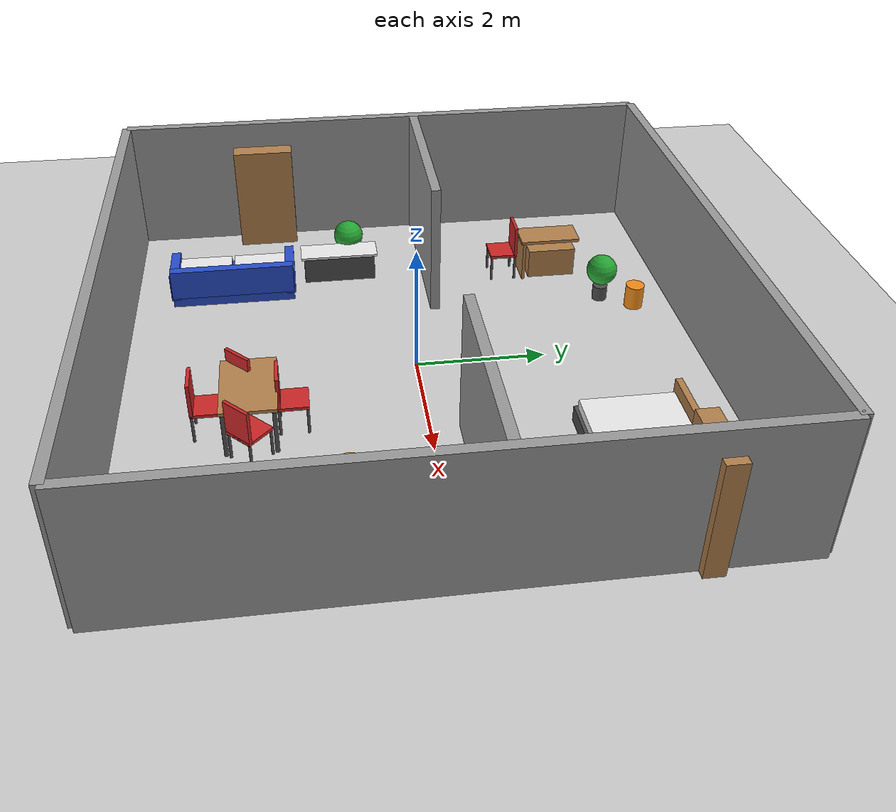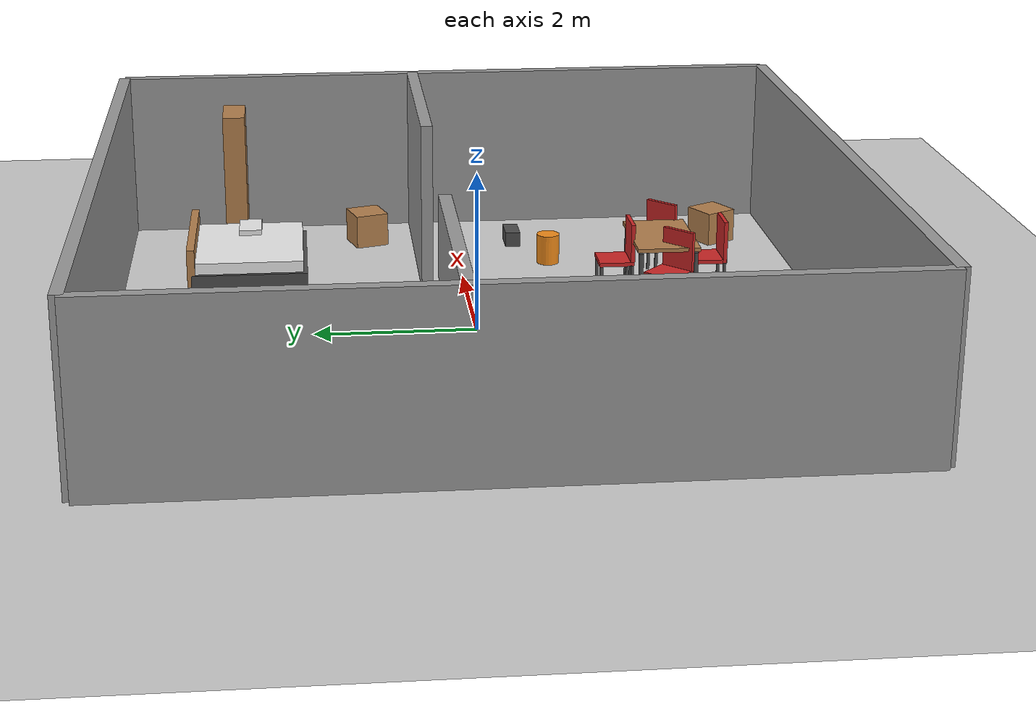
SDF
<?xml version="1.0"?>
<sdf version="1.6">
  <world name="house">
    <include>
      <uri>model://ground_plane</uri>
    </include>
    <include>
      <uri>model://sun</uri>
    </include>

    <!-- ==================== Outer walls (9 x 9 m) ==================== -->
    <model name="wall_north">
      <static>true</static>
      <pose>0 4.5 1.1 0 0 0</pose>
      <link name="link">
        <collision name="c"><geometry><box><size>9 0.15 2.2</size></box></geometry></collision>
        <visual name="v"><geometry><box><size>9 0.15 2.2</size></box></geometry>
          <material><script><name>Gazebo/Grey</name></script></material></visual>
      </link>
    </model>
    <model name="wall_south">
      <static>true</static>
      <pose>0 -4.5 1.1 0 0 0</pose>
      <link name="link">
        <collision name="c"><geometry><box><size>9 0.15 2.2</size></box></geometry></collision>
        <visual name="v"><geometry><box><size>9 0.15 2.2</size></box></geometry>
          <material><script><name>Gazebo/Grey</name></script></material></visual>
      </link>
    </model>
    <model name="wall_east">
      <static>true</static>
      <pose>4.5 0 1.1 0 0 1.5708</pose>
      <link name="link">
        <collision name="c"><geometry><box><size>9 0.15 2.2</size></box></geometry></collision>
        <visual name="v"><geometry><box><size>9 0.15 2.2</size></box></geometry>
          <material><script><name>Gazebo/Grey</name></script></material></visual>
      </link>
    </model>
    <model name="wall_west">
      <static>true</static>
      <pose>-4.5 0 1.1 0 0 1.5708</pose>
      <link name="link">
        <collision name="c"><geometry><box><size>9 0.15 2.2</size></box></geometry></collision>
        <visual name="v"><geometry><box><size>9 0.15 2.2</size></box></geometry>
          <material><script><name>Gazebo/Grey</name></script></material></visual>
      </link>
    </model>

    <!-- Interior wall with door gap at y=0.5 (gap x in [-1.5, 1.5]) -->
    <model name="wall_div_west">
      <static>true</static>
      <pose>-3.0 0.5 1.1 0 0 0</pose>
      <link name="link">
        <collision name="c"><geometry><box><size>3 0.15 2.2</size></box></geometry></collision>
        <visual name="v"><geometry><box><size>3 0.15 2.2</size></box></geometry>
          <material><script><name>Gazebo/Grey</name></script></material></visual>
      </link>
    </model>
    <model name="wall_div_east">
      <static>true</static>
      <pose>3.0 0.5 1.1 0 0 0</pose>
      <link name="link">
        <collision name="c"><geometry><box><size>3 0.15 2.2</size></box></geometry></collision>
        <visual name="v"><geometry><box><size>3 0.15 2.2</size></box></geometry>
          <material><script><name>Gazebo/Grey</name></script></material></visual>
      </link>
    </model>

    <!-- ==================== LIVING ROOM ==================== -->

    <!-- Table: top + 4 legs -->
    <model name="table">
      <static>true</static>
      <pose>1.2 -2.5 0 0 0 0</pose>
      <link name="link">
        <collision name="c_top"><geometry><box><size>1.2 0.8 0.05</size></box></geometry><pose>0 0 0.75 0 0 0</pose></collision>
        <visual name="v_top"><geometry><box><size>1.2 0.8 0.05</size></box></geometry><pose>0 0 0.75 0 0 0</pose>
          <material><script><name>Gazebo/Wood</name></script></material></visual>
        <collision name="c_l1"><geometry><cylinder><radius>0.03</radius><length>0.7</length></cylinder></geometry><pose>0.55 0.35 0.35 0 0 0</pose></collision>
        <visual name="v_l1"><geometry><cylinder><radius>0.03</radius><length>0.7</length></cylinder></geometry><pose>0.55 0.35 0.35 0 0 0</pose>
          <material><script><name>Gazebo/DarkGrey</name></script></material></visual>
        <collision name="c_l2"><geometry><cylinder><radius>0.03</radius><length>0.7</length></cylinder></geometry><pose>-0.55 0.35 0.35 0 0 0</pose></collision>
        <visual name="v_l2"><geometry><cylinder><radius>0.03</radius><length>0.7</length></cylinder></geometry><pose>-0.55 0.35 0.35 0 0 0</pose>
          <material><script><name>Gazebo/DarkGrey</name></script></material></visual>
        <collision name="c_l3"><geometry><cylinder><radius>0.03</radius><length>0.7</length></cylinder></geometry><pose>0.55 -0.35 0.35 0 0 0</pose></collision>
        <visual name="v_l3"><geometry><cylinder><radius>0.03</radius><length>0.7</length></cylinder></geometry><pose>0.55 -0.35 0.35 0 0 0</pose>
          <material><script><name>Gazebo/DarkGrey</name></script></material></visual>
        <collision name="c_l4"><geometry><cylinder><radius>0.03</radius><length>0.7</length></cylinder></geometry><pose>-0.55 -0.35 0.35 0 0 0</pose></collision>
        <visual name="v_l4"><geometry><cylinder><radius>0.03</radius><length>0.7</length></cylinder></geometry><pose>-0.55 -0.35 0.35 0 0 0</pose>
          <material><script><name>Gazebo/DarkGrey</name></script></material></visual>
      </link>
    </model>

    <!-- Chair: seat + back + 4 legs (macro-like, repeated 5x via separate models) -->
    <model name="chair1">
      <static>true</static>
      <pose>0.6 -2.5 0 0 0 0.785</pose>
      <link name="link">
        <collision name="c_seat"><geometry><box><size>0.45 0.45 0.05</size></box></geometry><pose>0 0 0.45 0 0 0</pose></collision>
        <visual name="v_seat"><geometry><box><size>0.45 0.45 0.05</size></box></geometry><pose>0 0 0.45 0 0 0</pose>
          <material><script><name>Gazebo/Red</name></script></material></visual>
        <collision name="c_back"><geometry><box><size>0.45 0.05 0.55</size></box></geometry><pose>0 -0.2 0.7 0 0 0</pose></collision>
        <visual name="v_back"><geometry><box><size>0.45 0.05 0.55</size></box></geometry><pose>0 -0.2 0.7 0 0 0</pose>
          <material><script><name>Gazebo/Red</name></script></material></visual>
        <collision name="c_c1"><geometry><cylinder><radius>0.02</radius><length>0.45</length></cylinder></geometry><pose>0.2 0.2 0.225 0 0 0</pose></collision>
        <visual name="v_c1"><geometry><cylinder><radius>0.02</radius><length>0.45</length></cylinder></geometry><pose>0.2 0.2 0.225 0 0 0</pose>
          <material><script><name>Gazebo/DarkGrey</name></script></material></visual>
        <collision name="c_c2"><geometry><cylinder><radius>0.02</radius><length>0.45</length></cylinder></geometry><pose>-0.2 0.2 0.225 0 0 0</pose></collision>
        <visual name="v_c2"><geometry><cylinder><radius>0.02</radius><length>0.45</length></cylinder></geometry><pose>-0.2 0.2 0.225 0 0 0</pose>
          <material><script><name>Gazebo/DarkGrey</name></script></material></visual>
        <collision name="c_c3"><geometry><cylinder><radius>0.02</radius><length>0.45</length></cylinder></geometry><pose>0.2 -0.2 0.225 0 0 0</pose></collision>
        <visual name="v_c3"><geometry><cylinder><radius>0.02</radius><length>0.45</length></cylinder></geometry><pose>0.2 -0.2 0.225 0 0 0</pose>
          <material><script><name>Gazebo/DarkGrey</name></script></material></visual>
        <collision name="c_c4"><geometry><cylinder><radius>0.02</radius><length>0.45</length></cylinder></geometry><pose>-0.2 -0.2 0.225 0 0 0</pose></collision>
        <visual name="v_c4"><geometry><cylinder><radius>0.02</radius><length>0.45</length></cylinder></geometry><pose>-0.2 -0.2 0.225 0 0 0</pose>
          <material><script><name>Gazebo/DarkGrey</name></script></material></visual>
      </link>
    </model>

    <model name="chair2">
      <static>true</static>
      <pose>1.8 -2.5 0 0 0 0.785</pose>
      <link name="link">
        <collision name="c_seat"><geometry><box><size>0.45 0.45 0.05</size></box></geometry><pose>0 0 0.45 0 0 0</pose></collision>
        <visual name="v_seat"><geometry><box><size>0.45 0.45 0.05</size></box></geometry><pose>0 0 0.45 0 0 0</pose>
          <material><script><name>Gazebo/Red</name></script></material></visual>
        <collision name="c_back"><geometry><box><size>0.45 0.05 0.55</size></box></geometry><pose>0 -0.2 0.7 0 0 0</pose></collision>
        <visual name="v_back"><geometry><box><size>0.45 0.05 0.55</size></box></geometry><pose>0 -0.2 0.7 0 0 0</pose>
          <material><script><name>Gazebo/Red</name></script></material></visual>
        <collision name="c_c1"><geometry><cylinder><radius>0.02</radius><length>0.45</length></cylinder></geometry><pose>0.2 0.2 0.225 0 0 0</pose></collision>
        <visual name="v_c1"><geometry><cylinder><radius>0.02</radius><length>0.45</length></cylinder></geometry><pose>0.2 0.2 0.225 0 0 0</pose>
          <material><script><name>Gazebo/DarkGrey</name></script></material></visual>
        <collision name="c_c2"><geometry><cylinder><radius>0.02</radius><length>0.45</length></cylinder></geometry><pose>-0.2 0.2 0.225 0 0 0</pose></collision>
        <visual name="v_c2"><geometry><cylinder><radius>0.02</radius><length>0.45</length></cylinder></geometry><pose>-0.2 0.2 0.225 0 0 0</pose>
          <material><script><name>Gazebo/DarkGrey</name></script></material></visual>
        <collision name="c_c3"><geometry><cylinder><radius>0.02</radius><length>0.45</length></cylinder></geometry><pose>0.2 -0.2 0.225 0 0 0</pose></collision>
        <visual name="v_c3"><geometry><cylinder><radius>0.02</radius><length>0.45</length></cylinder></geometry><pose>0.2 -0.2 0.225 0 0 0</pose>
          <material><script><name>Gazebo/DarkGrey</name></script></material></visual>
        <collision name="c_c4"><geometry><cylinder><radius>0.02</radius><length>0.45</length></cylinder></geometry><pose>-0.2 -0.2 0.225 0 0 0</pose></collision>
        <visual name="v_c4"><geometry><cylinder><radius>0.02</radius><length>0.45</length></cylinder></geometry><pose>-0.2 -0.2 0.225 0 0 0</pose>
          <material><script><name>Gazebo/DarkGrey</name></script></material></visual>
      </link>
    </model>

    <model name="chair3">
      <static>true</static>
      <pose>1.2 -1.9 0 0 0 0</pose>
      <link name="link">
        <collision name="c_seat"><geometry><box><size>0.45 0.45 0.05</size></box></geometry><pose>0 0 0.45 0 0 0</pose></collision>
        <visual name="v_seat"><geometry><box><size>0.45 0.45 0.05</size></box></geometry><pose>0 0 0.45 0 0 0</pose>
          <material><script><name>Gazebo/Red</name></script></material></visual>
        <collision name="c_back"><geometry><box><size>0.45 0.05 0.55</size></box></geometry><pose>0 -0.2 0.7 0 0 0</pose></collision>
        <visual name="v_back"><geometry><box><size>0.45 0.05 0.55</size></box></geometry><pose>0 -0.2 0.7 0 0 0</pose>
          <material><script><name>Gazebo/Red</name></script></material></visual>
        <collision name="c_c1"><geometry><cylinder><radius>0.02</radius><length>0.45</length></cylinder></geometry><pose>0.2 0.2 0.225 0 0 0</pose></collision>
        <visual name="v_c1"><geometry><cylinder><radius>0.02</radius><length>0.45</length></cylinder></geometry><pose>0.2 0.2 0.225 0 0 0</pose>
          <material><script><name>Gazebo/DarkGrey</name></script></material></visual>
        <collision name="c_c2"><geometry><cylinder><radius>0.02</radius><length>0.45</length></cylinder></geometry><pose>-0.2 0.2 0.225 0 0 0</pose></collision>
        <visual name="v_c2"><geometry><cylinder><radius>0.02</radius><length>0.45</length></cylinder></geometry><pose>-0.2 0.2 0.225 0 0 0</pose>
          <material><script><name>Gazebo/DarkGrey</name></script></material></visual>
        <collision name="c_c3"><geometry><cylinder><radius>0.02</radius><length>0.45</length></cylinder></geometry><pose>0.2 -0.2 0.225 0 0 0</pose></collision>
        <visual name="v_c3"><geometry><cylinder><radius>0.02</radius><length>0.45</length></cylinder></geometry><pose>0.2 -0.2 0.225 0 0 0</pose>
          <material><script><name>Gazebo/DarkGrey</name></script></material></visual>
        <collision name="c_c4"><geometry><cylinder><radius>0.02</radius><length>0.45</length></cylinder></geometry><pose>-0.2 -0.2 0.225 0 0 0</pose></collision>
        <visual name="v_c4"><geometry><cylinder><radius>0.02</radius><length>0.45</length></cylinder></geometry><pose>-0.2 -0.2 0.225 0 0 0</pose>
          <material><script><name>Gazebo/DarkGrey</name></script></material></visual>
      </link>
    </model>

    <model name="chair4">
      <static>true</static>
      <pose>1.2 -3.1 0 0 0 0</pose>
      <link name="link">
        <collision name="c_seat"><geometry><box><size>0.45 0.45 0.05</size></box></geometry><pose>0 0 0.45 0 0 0</pose></collision>
        <visual name="v_seat"><geometry><box><size>0.45 0.45 0.05</size></box></geometry><pose>0 0 0.45 0 0 0</pose>
          <material><script><name>Gazebo/Red</name></script></material></visual>
        <collision name="c_back"><geometry><box><size>0.45 0.05 0.55</size></box></geometry><pose>0 -0.2 0.7 0 0 0</pose></collision>
        <visual name="v_back"><geometry><box><size>0.45 0.05 0.55</size></box></geometry><pose>0 -0.2 0.7 0 0 0</pose>
          <material><script><name>Gazebo/Red</name></script></material></visual>
        <collision name="c_c1"><geometry><cylinder><radius>0.02</radius><length>0.45</length></cylinder></geometry><pose>0.2 0.2 0.225 0 0 0</pose></collision>
        <visual name="v_c1"><geometry><cylinder><radius>0.02</radius><length>0.45</length></cylinder></geometry><pose>0.2 0.2 0.225 0 0 0</pose>
          <material><script><name>Gazebo/DarkGrey</name></script></material></visual>
        <collision name="c_c2"><geometry><cylinder><radius>0.02</radius><length>0.45</length></cylinder></geometry><pose>-0.2 0.2 0.225 0 0 0</pose></collision>
        <visual name="v_c2"><geometry><cylinder><radius>0.02</radius><length>0.45</length></cylinder></geometry><pose>-0.2 0.2 0.225 0 0 0</pose>
          <material><script><name>Gazebo/DarkGrey</name></script></material></visual>
        <collision name="c_c3"><geometry><cylinder><radius>0.02</radius><length>0.45</length></cylinder></geometry><pose>0.2 -0.2 0.225 0 0 0</pose></collision>
        <visual name="v_c3"><geometry><cylinder><radius>0.02</radius><length>0.45</length></cylinder></geometry><pose>0.2 -0.2 0.225 0 0 0</pose>
          <material><script><name>Gazebo/DarkGrey</name></script></material></visual>
        <collision name="c_c4"><geometry><cylinder><radius>0.02</radius><length>0.45</length></cylinder></geometry><pose>-0.2 -0.2 0.225 0 0 0</pose></collision>
        <visual name="v_c4"><geometry><cylinder><radius>0.02</radius><length>0.45</length></cylinder></geometry><pose>-0.2 -0.2 0.225 0 0 0</pose>
          <material><script><name>Gazebo/DarkGrey</name></script></material></visual>
      </link>
    </model>

    <!-- Sofa: base + back + 2 arms + cushions -->
    <model name="sofa">
      <static>true</static>
      <pose>-2.5 -2.8 0 0 0 1.5708</pose>
      <link name="link">
        <collision name="c_base"><geometry><box><size>2.0 0.8 0.35</size></box></geometry><pose>0 0 0.175 0 0 0</pose></collision>
        <visual name="v_base"><geometry><box><size>2.0 0.8 0.35</size></box></geometry><pose>0 0 0.175 0 0 0</pose>
          <material><script><name>Gazebo/Blue</name></script></material></visual>
        <collision name="c_back"><geometry><box><size>2.0 0.15 0.5</size></box></geometry><pose>0 -0.4 0.45 0 0 0</pose></collision>
        <visual name="v_back"><geometry><box><size>2.0 0.15 0.5</size></box></geometry><pose>0 -0.4 0.45 0 0 0</pose>
          <material><script><name>Gazebo/Blue</name></script></material></visual>
        <collision name="c_arm1"><geometry><box><size>0.15 0.8 0.45</size></box></geometry><pose>0.95 0 0.35 0 0 0</pose></collision>
        <visual name="v_arm1"><geometry><box><size>0.15 0.8 0.45</size></box></geometry><pose>0.95 0 0.35 0 0 0</pose>
          <material><script><name>Gazebo/Blue</name></script></material></visual>
        <collision name="c_arm2"><geometry><box><size>0.15 0.8 0.45</size></box></geometry><pose>-0.95 0 0.35 0 0 0</pose></collision>
        <visual name="v_arm2"><geometry><box><size>0.15 0.8 0.45</size></box></geometry><pose>-0.95 0 0.35 0 0 0</pose>
          <material><script><name>Gazebo/Blue</name></script></material></visual>
        <visual name="v_cu1"><geometry><box><size>0.85 0.6 0.12</size></box></geometry><pose>0.45 0.05 0.42 0 0 0</pose>
          <material><script><name>Gazebo/White</name></script></material></visual>
        <visual name="v_cu2"><geometry><box><size>0.85 0.6 0.12</size></box></geometry><pose>-0.45 0.05 0.42 0 0 0</pose>
          <material><script><name>Gazebo/White</name></script></material></visual>
      </link>
    </model>

    <!-- TV stand -->
    <model name="tv_stand">
      <static>true</static>
      <pose>-2.8 -1.0 0 0 0 1.5708</pose>
      <link name="link">
        <collision name="c_base"><geometry><box><size>1.2 0.4 0.45</size></box></geometry><pose>0 0 0.225 0 0 0</pose></collision>
        <visual name="v_base"><geometry><box><size>1.2 0.4 0.45</size></box></geometry><pose>0 0 0.225 0 0 0</pose>
          <material><script><name>Gazebo/DarkGrey</name></script></material></visual>
        <visual name="v_top"><geometry><box><size>1.3 0.45 0.04</size></box></geometry><pose>0 0 0.47 0 0 0</pose>
          <material><script><name>Gazebo/White</name></script></material></visual>
      </link>
    </model>

    <!-- Bookshelf: frame + 3 shelves -->
    <model name="bookshelf">
      <static>true</static>
      <pose>-4.2 -2.2 0 0 0 1.5708</pose>
      <link name="link">
        <collision name="c_frame"><geometry><box><size>1.0 0.3 1.8</size></box></geometry><pose>0 0 0.9 0 0 0</pose></collision>
        <visual name="v_frame"><geometry><box><size>1.0 0.3 1.8</size></box></geometry><pose>0 0 0.9 0 0 0</pose>
          <material><script><name>Gazebo/Wood</name></script></material></visual>
        <visual name="v_s1"><geometry><box><size>0.95 0.05 0.02</size></box></geometry><pose>0 0.05 0.6 0 0 0</pose>
          <material><script><name>Gazebo/Wood</name></script></material></visual>
        <visual name="v_s2"><geometry><box><size>0.95 0.05 0.02</size></box></geometry><pose>0 0.05 1.0 0 0 0</pose>
          <material><script><name>Gazebo/Wood</name></script></material></visual>
        <visual name="v_s3"><geometry><box><size>0.95 0.05 0.02</size></box></geometry><pose>0 0.05 1.4 0 0 0</pose>
          <material><script><name>Gazebo/Wood</name></script></material></visual>
      </link>
    </model>

    <!-- Wooden box -->
    <model name="wooden_box">
      <static>true</static>
      <pose>3.3 -3.6 0 0 0 0.5</pose>
      <link name="link">
        <collision name="c"><geometry><box><size>0.45 0.45 0.45</size></box></geometry><pose>0 0 0.225 0 0 0</pose></collision>
        <visual name="v"><geometry><box><size>0.45 0.45 0.45</size></box></geometry><pose>0 0 0.225 0 0 0</pose>
          <material><script><name>Gazebo/Wood</name></script></material></visual>
      </link>
    </model>

    <!-- Cinder block -->
    <model name="cinder_block">
      <static>true</static>
      <pose>3.4 -0.8 0 0 0 0</pose>
      <link name="link">
        <collision name="c"><geometry><box><size>0.4 0.2 0.2</size></box></geometry><pose>0 0 0.1 0 0 0</pose></collision>
        <visual name="v"><geometry><box><size>0.4 0.2 0.2</size></box></geometry><pose>0 0 0.1 0 0 0</pose>
          <material><script><name>Gazebo/DarkGrey</name></script></material></visual>
      </link>
    </model>

    <!-- Construction cone -->
    <model name="cone">
      <static>true</static>
      <pose>2.5 -1.2 0 0 0 0</pose>
      <link name="link">
        <collision name="c"><geometry><cylinder><radius>0.15</radius><length>0.4</length></cylinder></geometry><pose>0 0 0.2 0 0 0</pose></collision>
        <visual name="v"><geometry><cylinder><radius>0.15</radius><length>0.4</length></cylinder></geometry><pose>0 0 0.2 0 0 0</pose>
          <material><script><name>Gazebo/Orange</name></script></material></visual>
      </link>
    </model>

    <!-- Plant -->
    <model name="plant_lr">
      <static>true</static>
      <pose>-3.2 -0.8 0 0 0 0</pose>
      <link name="link">
        <visual name="v_pot"><geometry><cylinder><radius>0.12</radius><length>0.25</length></cylinder></geometry><pose>0 0 0.125 0 0 0</pose>
          <material><script><name>Gazebo/DarkGrey</name></script></material></visual>
        <visual name="v_leaf"><geometry><sphere><radius>0.25</radius></sphere></geometry><pose>0 0 0.55 0 0 0</pose>
          <material><script><name>Gazebo/Green</name></script></material></visual>
        <collision name="c_pot"><geometry><cylinder><radius>0.12</radius><length>0.25</length></cylinder></geometry><pose>0 0 0.125 0 0 0</pose></collision>
      </link>
    </model>

    <!-- ==================== BEDROOM ==================== -->

    <!-- Bed: base + mattress + pillow + headboard -->
    <model name="bed">
      <static>true</static>
      <pose>2.5 2.8 0 0 0 0</pose>
      <link name="link">
        <collision name="c_base"><geometry><box><size>1.8 1.5 0.25</size></box></geometry><pose>0 0 0.125 0 0 0</pose></collision>
        <visual name="v_base"><geometry><box><size>1.8 1.5 0.25</size></box></geometry><pose>0 0 0.125 0 0 0</pose>
          <material><script><name>Gazebo/DarkGrey</name></script></material></visual>
        <visual name="v_mat"><geometry><box><size>1.7 1.4 0.15</size></box></geometry><pose>0 0 0.325 0 0 0</pose>
          <material><script><name>Gazebo/White</name></script></material></visual>
        <visual name="v_pillow"><geometry><box><size>0.5 0.3 0.08</size></box></geometry><pose>0.55 0 0.43 0 0 0</pose>
          <material><script><name>Gazebo/White</name></script></material></visual>
        <visual name="v_head"><geometry><box><size>1.8 0.1 0.5</size></box></geometry><pose>0 0.75 0.35 0 0 0</pose>
          <material><script><name>Gazebo/Wood</name></script></material></visual>
        <collision name="c_head"><geometry><box><size>1.8 0.1 0.5</size></box></geometry><pose>0 0.75 0.35 0 0 0</pose></collision>
      </link>
    </model>

    <!-- Desk -->
    <model name="desk">
      <static>true</static>
      <pose>-2.5 2.6 0 0 0 1.5708</pose>
      <link name="link">
        <collision name="c_top"><geometry><box><size>1.0 0.5 0.05</size></box></geometry><pose>0 0 0.7 0 0 0</pose></collision>
        <visual name="v_top"><geometry><box><size>1.0 0.5 0.05</size></box></geometry><pose>0 0 0.7 0 0 0</pose>
          <material><script><name>Gazebo/Wood</name></script></material></visual>
        <collision name="c_drawer"><geometry><box><size>0.8 0.4 0.5</size></box></geometry><pose>0.05 0 0.25 0 0 0</pose></collision>
        <visual name="v_drawer"><geometry><box><size>0.8 0.4 0.5</size></box></geometry><pose>0.05 0 0.25 0 0 0</pose>
          <material><script><name>Gazebo/Wood</name></script></material></visual>
        <visual name="v_side"><geometry><box><size>0.05 0.5 0.7</size></box></geometry><pose>-0.45 0 0.35 0 0 0</pose>
          <material><script><name>Gazebo/Wood</name></script></material></visual>
        <collision name="c_side"><geometry><box><size>0.05 0.5 0.7</size></box></geometry><pose>-0.45 0 0.35 0 0 0</pose></collision>
      </link>
    </model>

    <!-- Bedroom chair -->
    <model name="chair5">
      <static>true</static>
      <pose>-2.5 1.8 0 0 0 3.14159</pose>
      <link name="link">
        <collision name="c_seat"><geometry><box><size>0.45 0.45 0.05</size></box></geometry><pose>0 0 0.45 0 0 0</pose></collision>
        <visual name="v_seat"><geometry><box><size>0.45 0.45 0.05</size></box></geometry><pose>0 0 0.45 0 0 0</pose>
          <material><script><name>Gazebo/Red</name></script></material></visual>
        <collision name="c_back"><geometry><box><size>0.45 0.05 0.55</size></box></geometry><pose>0 -0.2 0.7 0 0 0</pose></collision>
        <visual name="v_back"><geometry><box><size>0.45 0.05 0.55</size></box></geometry><pose>0 -0.2 0.7 0 0 0</pose>
          <material><script><name>Gazebo/Red</name></script></material></visual>
        <collision name="c_c1"><geometry><cylinder><radius>0.02</radius><length>0.45</length></cylinder></geometry><pose>0.2 0.2 0.225 0 0 0</pose></collision>
        <visual name="v_c1"><geometry><cylinder><radius>0.02</radius><length>0.45</length></cylinder></geometry><pose>0.2 0.2 0.225 0 0 0</pose>
          <material><script><name>Gazebo/DarkGrey</name></script></material></visual>
        <collision name="c_c2"><geometry><cylinder><radius>0.02</radius><length>0.45</length></cylinder></geometry><pose>-0.2 0.2 0.225 0 0 0</pose></collision>
        <visual name="v_c2"><geometry><cylinder><radius>0.02</radius><length>0.45</length></cylinder></geometry><pose>-0.2 0.2 0.225 0 0 0</pose>
          <material><script><name>Gazebo/DarkGrey</name></script></material></visual>
        <collision name="c_c3"><geometry><cylinder><radius>0.02</radius><length>0.45</length></cylinder></geometry><pose>0.2 -0.2 0.225 0 0 0</pose></collision>
        <visual name="v_c3"><geometry><cylinder><radius>0.02</radius><length>0.45</length></cylinder></geometry><pose>0.2 -0.2 0.225 0 0 0</pose>
          <material><script><name>Gazebo/DarkGrey</name></script></material></visual>
        <collision name="c_c4"><geometry><cylinder><radius>0.02</radius><length>0.45</length></cylinder></geometry><pose>-0.2 -0.2 0.225 0 0 0</pose></collision>
        <visual name="v_c4"><geometry><cylinder><radius>0.02</radius><length>0.45</length></cylinder></geometry><pose>-0.2 -0.2 0.225 0 0 0</pose>
          <material><script><name>Gazebo/DarkGrey</name></script></material></visual>
      </link>
    </model>

    <!-- Bedroom bookshelf -->
    <model name="bookshelf2">
      <static>true</static>
      <pose>4.2 3.0 0 0 0 0</pose>
      <link name="link">
        <collision name="c_frame"><geometry><box><size>1.0 0.3 1.8</size></box></geometry><pose>0 0 0.9 0 0 0</pose></collision>
        <visual name="v_frame"><geometry><box><size>1.0 0.3 1.8</size></box></geometry><pose>0 0 0.9 0 0 0</pose>
          <material><script><name>Gazebo/Wood</name></script></material></visual>
      </link>
    </model>

    <!-- Bedroom wooden box -->
    <model name="wooden_box2">
      <static>true</static>
      <pose>3.6 1.2 0 0 0 0.3</pose>
      <link name="link">
        <collision name="c"><geometry><box><size>0.45 0.45 0.45</size></box></geometry><pose>0 0 0.225 0 0 0</pose></collision>
        <visual name="v"><geometry><box><size>0.45 0.45 0.45</size></box></geometry><pose>0 0 0.225 0 0 0</pose>
          <material><script><name>Gazebo/Wood</name></script></material></visual>
      </link>
    </model>

    <!-- Bedroom cone -->
    <model name="cone2">
      <static>true</static>
      <pose>-1.2 3.8 0 0 0 0</pose>
      <link name="link">
        <collision name="c"><geometry><cylinder><radius>0.15</radius><length>0.4</length></cylinder></geometry><pose>0 0 0.2 0 0 0</pose></collision>
        <visual name="v"><geometry><cylinder><radius>0.15</radius><length>0.4</length></cylinder></geometry><pose>0 0 0.2 0 0 0</pose>
          <material><script><name>Gazebo/Orange</name></script></material></visual>
      </link>
    </model>

    <!-- Bedroom plant -->
    <model name="plant_br">
      <static>true</static>
      <pose>-1.5 3.3 0 0 0 0</pose>
      <link name="link">
        <visual name="v_pot"><geometry><cylinder><radius>0.12</radius><length>0.25</length></cylinder></geometry><pose>0 0 0.125 0 0 0</pose>
          <material><script><name>Gazebo/DarkGrey</name></script></material></visual>
        <visual name="v_leaf"><geometry><sphere><radius>0.25</radius></sphere></geometry><pose>0 0 0.55 0 0 0</pose>
          <material><script><name>Gazebo/Green</name></script></material></visual>
        <collision name="c_pot"><geometry><cylinder><radius>0.12</radius><length>0.25</length></cylinder></geometry><pose>0 0 0.125 0 0 0</pose></collision>
      </link>
    </model>
  </world>
</sdf>
